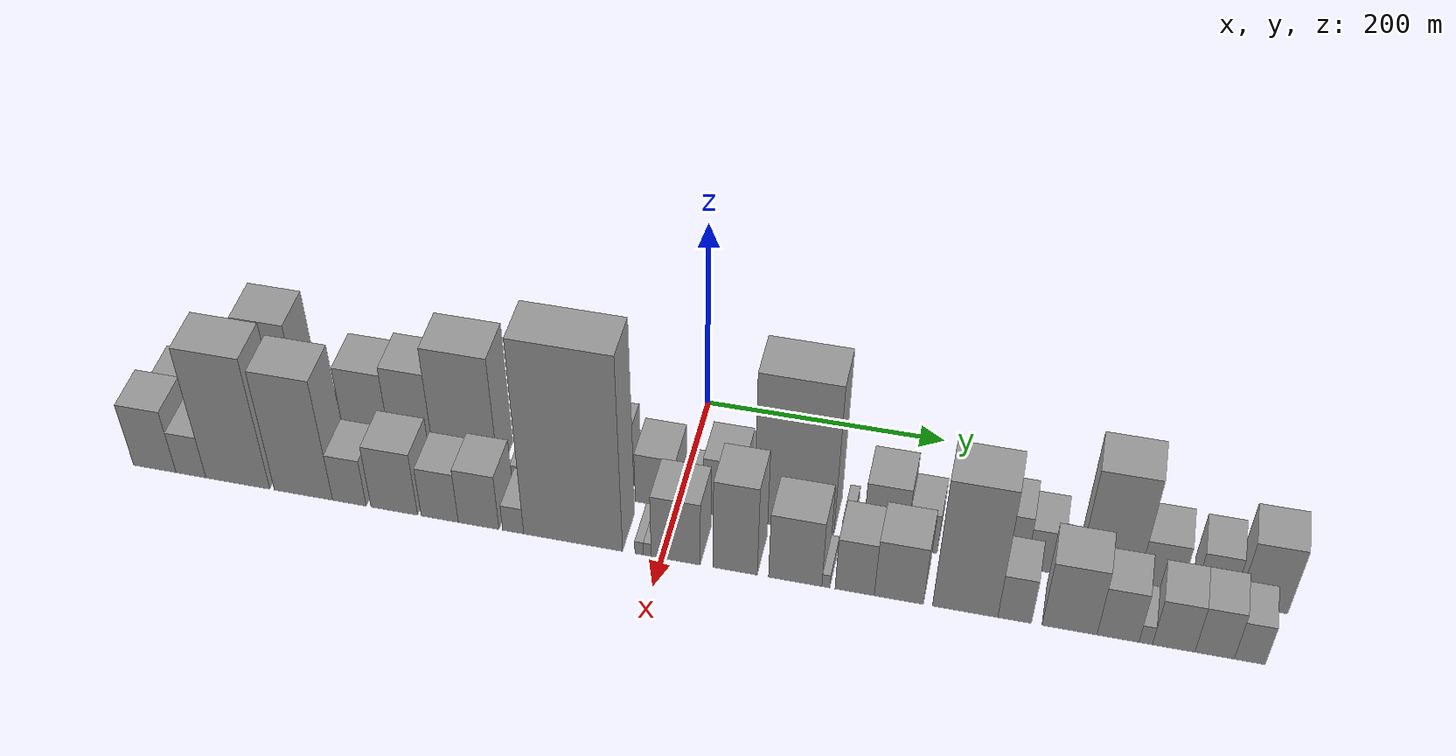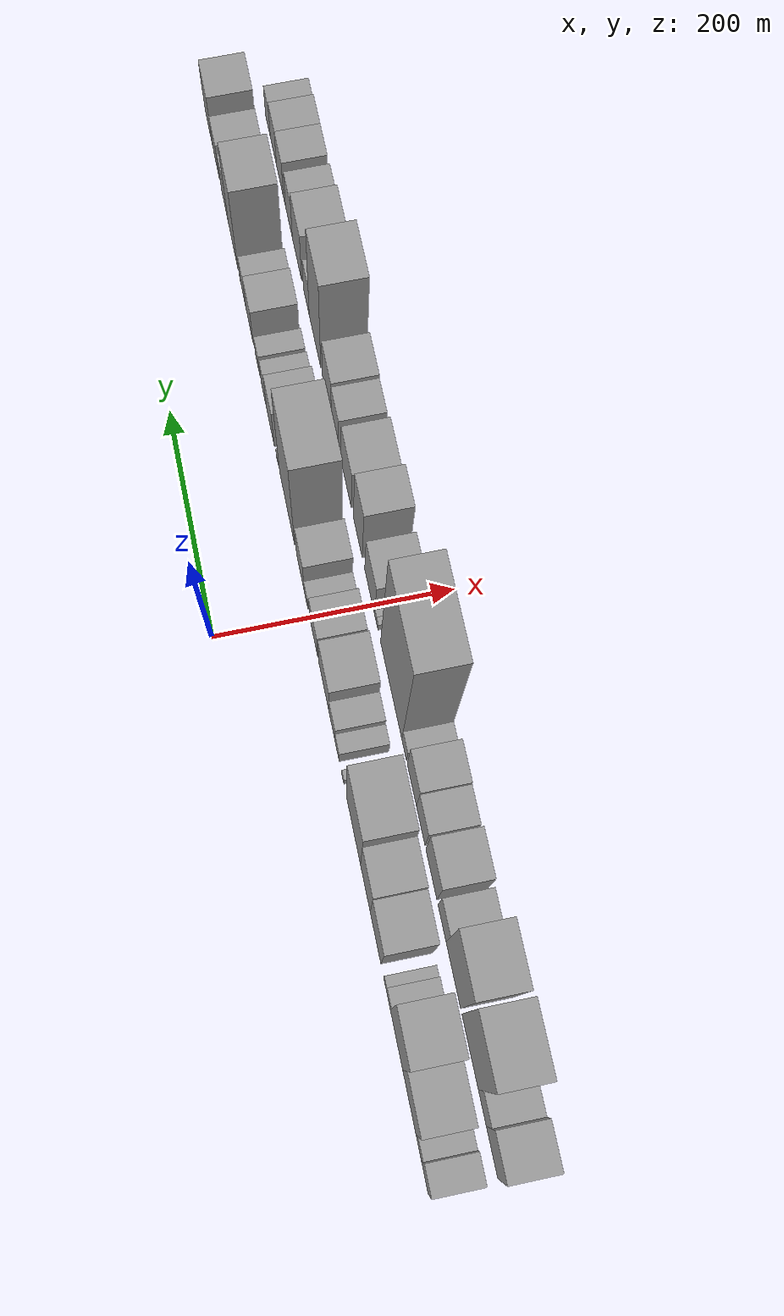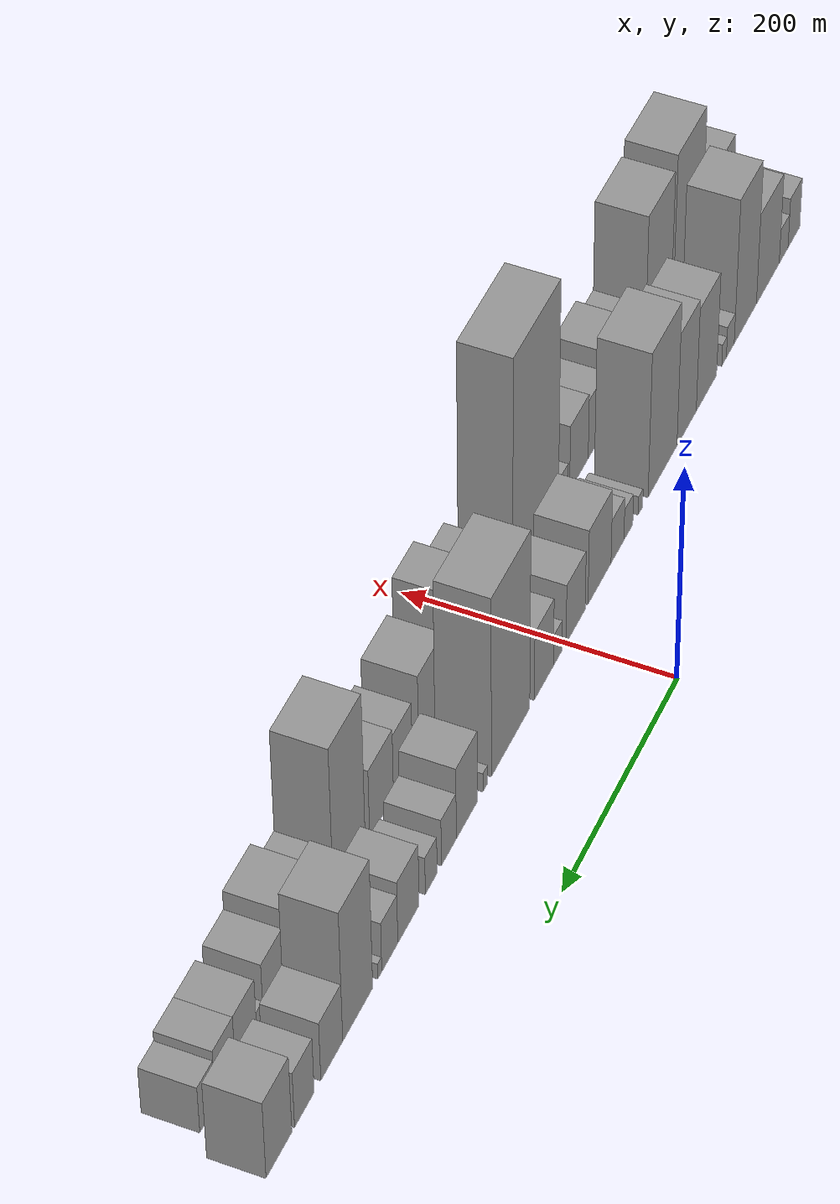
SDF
<sdf version="1.6">
 <world name="default">
  <scene>
   <sky><clouds><speed>12</speed></clouds></sky>
   <ambient>0.4 0.4 0.4 1</ambient>
   <background>0.7 0.7 0.7 1</background>
   <shadows>1</shadows>
  </scene>
  <gravity>0 0 -9.8066</gravity>
  <magnetic_field>6e-06 2.3e-05 -4.2e-05</magnetic_field>
  <physics default="0" name="default_physics" type="ode">
   <ode>
    <solver>
     <type>quick</type>
     <iters>10</iters>
     <sor>1.0</sor>
     <use_dynamic_moi_rescaling>0</use_dynamic_moi_rescaling>
    </solver>
    <constraints>
     <cfm>0</cfm>
     <erp>0.2</erp>
     <contact_max_correcting_vel>100</contact_max_correcting_vel>
     <contact_surface_layer>0.001</contact_surface_layer>
    </constraints>
   </ode>
   <max_step_size>0.004</max_step_size>
   <real_time_factor>1</real_time_factor>
   <real_time_update_rate>250</real_time_update_rate>
  </physics>
  <light name="sun" type="directional">
   <pose>0 0 10 0 0 0</pose>
   <diffuse>0.8 0.8 0.8 1</diffuse>
   <specular>0.2 0.2 0.2 1</specular>
   <attenuation>
    <range>1000</range>
    <constant>0.9</constant>
    <linear>0.01</linear>
    <quadratic>0.001</quadratic>
   </attenuation>
   <direction>-0.5 0.1 -0.9</direction>
  </light>
  <model name="building_1">
   <static>1</static>
   <pose>100.0000 -431.9511 0 0.000000 0.000000 0.000000</pose>
   <link name="link">
    <pose>0 0 24.00 0 0 0</pose>
    <collision name="collision"><geometry><box><size>40.0000 24.0978 48.0000</size></box></geometry></collision>
    <visual name="visual">
     <cast_shadows>0</cast_shadows>
     <geometry><box><size>40.0000 24.0978 48.0000</size></box></geometry>
     <material>
      <script>
       <uri>model://grey_wall/materials/scripts</uri>
       <uri>model://grey_wall/materials/textures</uri>
       <name>vrc/grey_wall</name>
      </script>
     </material>
    </visual>
   </link>
  </model>
  <model name="building_2">
   <static>1</static>
   <pose>100.0000 -410.9949 0 0.000000 0.000000 0.000000</pose>
   <link name="link">
    <pose>0 0 16.50 0 0 0</pose>
    <collision name="collision"><geometry><box><size>40.0000 17.8146 33.0000</size></box></geometry></collision>
    <visual name="visual">
     <cast_shadows>0</cast_shadows>
     <geometry><box><size>40.0000 17.8146 33.0000</size></box></geometry>
     <material>
      <script>
       <uri>model://grey_wall/materials/scripts</uri>
       <uri>model://grey_wall/materials/textures</uri>
       <name>vrc/grey_wall</name>
      </script>
     </material>
    </visual>
   </link>
  </model>
  <model name="building_3">
   <static>1</static>
   <pose>100.0000 -379.1846 0 0.000000 0.000000 0.000000</pose>
   <link name="link">
    <pose>0 0 43.50 0 0 0</pose>
    <collision name="collision"><geometry><box><size>40.0000 45.8061 87.0000</size></box></geometry></collision>
    <visual name="visual">
     <cast_shadows>0</cast_shadows>
     <geometry><box><size>40.0000 45.8061 87.0000</size></box></geometry>
     <material>
      <script>
       <uri>model://grey_wall/materials/scripts</uri>
       <uri>model://grey_wall/materials/textures</uri>
       <name>vrc/grey_wall</name>
      </script>
     </material>
    </visual>
   </link>
  </model>
  <model name="building_4">
   <static>1</static>
   <pose>100.0000 -334.3210 0 0.000000 0.000000 0.000000</pose>
   <link name="link">
    <pose>0 0 69.00 0 0 0</pose>
    <collision name="collision"><geometry><box><size>40.0000 43.9211 138.0000</size></box></geometry></collision>
    <visual name="visual">
     <cast_shadows>0</cast_shadows>
     <geometry><box><size>40.0000 43.9211 138.0000</size></box></geometry>
     <material>
      <script>
       <uri>model://grey_wall/materials/scripts</uri>
       <uri>model://grey_wall/materials/textures</uri>
       <name>vrc/grey_wall</name>
      </script>
     </material>
    </visual>
   </link>
  </model>
  <model name="building_5">
   <static>1</static>
   <pose>100.0000 -304.6716 0 0.000000 0.000000 0.000000</pose>
   <link name="link">
    <pose>0 0 15.00 0 0 0</pose>
    <collision name="collision"><geometry><box><size>40.0000 15.3777 30.0000</size></box></geometry></collision>
    <visual name="visual">
     <cast_shadows>0</cast_shadows>
     <geometry><box><size>40.0000 15.3777 30.0000</size></box></geometry>
     <material>
      <script>
       <uri>model://grey_wall/materials/scripts</uri>
       <uri>model://grey_wall/materials/textures</uri>
       <name>vrc/grey_wall</name>
      </script>
     </material>
    </visual>
   </link>
  </model>
  <model name="building_6">
   <static>1</static>
   <pose>100.0000 -292.4860 0 0.000000 0.000000 0.000000</pose>
   <link name="link">
    <pose>0 0 10.50 0 0 0</pose>
    <collision name="collision"><geometry><box><size>40.0000 8.9936 21.0000</size></box></geometry></collision>
    <visual name="visual">
     <cast_shadows>0</cast_shadows>
     <geometry><box><size>40.0000 8.9936 21.0000</size></box></geometry>
     <material>
      <script>
       <uri>model://grey_wall/materials/scripts</uri>
       <uri>model://grey_wall/materials/textures</uri>
       <name>vrc/grey_wall</name>
      </script>
     </material>
    </visual>
   </link>
  </model>
  <model name="building_7">
   <static>1</static>
   <pose>100.0000 -258.3586 0 0.000000 0.000000 0.000000</pose>
   <link name="link">
    <pose>0 0 49.50 0 0 0</pose>
    <collision name="collision"><geometry><box><size>40.0000 39.2611 99.0000</size></box></geometry></collision>
    <visual name="visual">
     <cast_shadows>0</cast_shadows>
     <geometry><box><size>40.0000 39.2611 99.0000</size></box></geometry>
     <material>
      <script>
       <uri>model://grey_wall/materials/scripts</uri>
       <uri>model://grey_wall/materials/textures</uri>
       <name>vrc/grey_wall</name>
      </script>
     </material>
    </visual>
   </link>
  </model>
  <model name="building_8">
   <static>1</static>
   <pose>100.0000 -220.4255 0 0.000000 0.000000 0.000000</pose>
   <link name="link">
    <pose>0 0 54.00 0 0 0</pose>
    <collision name="collision"><geometry><box><size>40.0000 36.6050 108.0000</size></box></geometry></collision>
    <visual name="visual">
     <cast_shadows>0</cast_shadows>
     <geometry><box><size>40.0000 36.6050 108.0000</size></box></geometry>
     <material>
      <script>
       <uri>model://grey_wall/materials/scripts</uri>
       <uri>model://grey_wall/materials/textures</uri>
       <name>vrc/grey_wall</name>
      </script>
     </material>
    </visual>
   </link>
  </model>
  <model name="building_9">
   <static>1</static>
   <pose>100.0000 -175.1118 0 0.000000 0.000000 0.000000</pose>
   <link name="link">
    <pose>0 0 69.00 0 0 0</pose>
    <collision name="collision"><geometry><box><size>40.0000 54.0224 138.0000</size></box></geometry></collision>
    <visual name="visual">
     <cast_shadows>0</cast_shadows>
     <geometry><box><size>40.0000 54.0224 138.0000</size></box></geometry>
     <material>
      <script>
       <uri>model://grey_wall/materials/scripts</uri>
       <uri>model://grey_wall/materials/textures</uri>
       <name>vrc/grey_wall</name>
      </script>
     </material>
    </visual>
   </link>
  </model>
  <model name="building_10">
   <static>1</static>
   <pose>100.0000 -134.0297 0 0.000000 0.000000 0.000000</pose>
   <link name="link">
    <pose>0 0 9.00 0 0 0</pose>
    <collision name="collision"><geometry><box><size>40.0000 8.1418 18.0000</size></box></geometry></collision>
    <visual name="visual">
     <cast_shadows>0</cast_shadows>
     <geometry><box><size>40.0000 8.1418 18.0000</size></box></geometry>
     <material>
      <script>
       <uri>model://grey_wall/materials/scripts</uri>
       <uri>model://grey_wall/materials/textures</uri>
       <name>vrc/grey_wall</name>
      </script>
     </material>
    </visual>
   </link>
  </model>
  <model name="building_11">
   <static>1</static>
   <pose>100.0000 -111.8180 0 0.000000 0.000000 0.000000</pose>
   <link name="link">
    <pose>0 0 15.00 0 0 0</pose>
    <collision name="collision"><geometry><box><size>40.0000 16.2816 30.0000</size></box></geometry></collision>
    <visual name="visual">
     <cast_shadows>0</cast_shadows>
     <geometry><box><size>40.0000 16.2816 30.0000</size></box></geometry>
     <material>
      <script>
       <uri>model://grey_wall/materials/scripts</uri>
       <uri>model://grey_wall/materials/textures</uri>
       <name>vrc/grey_wall</name>
      </script>
     </material>
    </visual>
   </link>
  </model>
  <model name="building_12">
   <static>1</static>
   <pose>100.0000 -91.9332 0 0.000000 0.000000 0.000000</pose>
   <link name="link">
    <pose>0 0 21.00 0 0 0</pose>
    <collision name="collision"><geometry><box><size>40.0000 23.4880 42.0000</size></box></geometry></collision>
    <visual name="visual">
     <cast_shadows>0</cast_shadows>
     <geometry><box><size>40.0000 23.4880 42.0000</size></box></geometry>
     <material>
      <script>
       <uri>model://grey_wall/materials/scripts</uri>
       <uri>model://grey_wall/materials/textures</uri>
       <name>vrc/grey_wall</name>
      </script>
     </material>
    </visual>
   </link>
  </model>
  <model name="building_13">
   <static>1</static>
   <pose>100.0000 -59.5194 0 0.000000 0.000000 0.000000</pose>
   <link name="link">
    <pose>0 0 36.00 0 0 0</pose>
    <collision name="collision"><geometry><box><size>40.0000 41.3396 72.0000</size></box></geometry></collision>
    <visual name="visual">
     <cast_shadows>0</cast_shadows>
     <geometry><box><size>40.0000 41.3396 72.0000</size></box></geometry>
     <material>
      <script>
       <uri>model://grey_wall/materials/scripts</uri>
       <uri>model://grey_wall/materials/textures</uri>
       <name>vrc/grey_wall</name>
      </script>
     </material>
    </visual>
   </link>
  </model>
  <model name="building_14">
   <static>1</static>
   <pose>100.0000 -16.9696 0 0.000000 0.000000 0.000000</pose>
   <link name="link">
    <pose>0 0 28.50 0 0 0</pose>
    <collision name="collision"><geometry><box><size>40.0000 33.7600 57.0000</size></box></geometry></collision>
    <visual name="visual">
     <cast_shadows>0</cast_shadows>
     <geometry><box><size>40.0000 33.7600 57.0000</size></box></geometry>
     <material>
      <script>
       <uri>model://grey_wall/materials/scripts</uri>
       <uri>model://grey_wall/materials/textures</uri>
       <name>vrc/grey_wall</name>
      </script>
     </material>
    </visual>
   </link>
  </model>
  <model name="building_15">
   <static>1</static>
   <pose>100.0000 14.4536 0 0.000000 0.000000 0.000000</pose>
   <link name="link">
    <pose>0 0 15.00 0 0 0</pose>
    <collision name="collision"><geometry><box><size>40.0000 15.0865 30.0000</size></box></geometry></collision>
    <visual name="visual">
     <cast_shadows>0</cast_shadows>
     <geometry><box><size>40.0000 15.0865 30.0000</size></box></geometry>
     <material>
      <script>
       <uri>model://grey_wall/materials/scripts</uri>
       <uri>model://grey_wall/materials/textures</uri>
       <name>vrc/grey_wall</name>
      </script>
     </material>
    </visual>
   </link>
  </model>
  <model name="building_16">
   <static>1</static>
   <pose>100.0000 38.5198 0 0.000000 0.000000 0.000000</pose>
   <link name="link">
    <pose>0 0 33.00 0 0 0</pose>
    <collision name="collision"><geometry><box><size>40.0000 33.0458 66.0000</size></box></geometry></collision>
    <visual name="visual">
     <cast_shadows>0</cast_shadows>
     <geometry><box><size>40.0000 33.0458 66.0000</size></box></geometry>
     <material>
      <script>
       <uri>model://grey_wall/materials/scripts</uri>
       <uri>model://grey_wall/materials/textures</uri>
       <name>vrc/grey_wall</name>
      </script>
     </material>
    </visual>
   </link>
  </model>
  <model name="building_17">
   <static>1</static>
   <pose>100.0000 95.5724 0 0.000000 0.000000 0.000000</pose>
   <link name="link">
    <pose>0 0 85.50 0 0 0</pose>
    <collision name="collision"><geometry><box><size>40.0000 65.0595 171.0000</size></box></geometry></collision>
    <visual name="visual">
     <cast_shadows>0</cast_shadows>
     <geometry><box><size>40.0000 65.0595 171.0000</size></box></geometry>
     <material>
      <script>
       <uri>model://grey_wall/materials/scripts</uri>
       <uri>model://grey_wall/materials/textures</uri>
       <name>vrc/grey_wall</name>
      </script>
     </material>
    </visual>
   </link>
  </model>
  <model name="building_18">
   <static>1</static>
   <pose>100.0000 138.0906 0 0.000000 0.000000 0.000000</pose>
   <link name="link">
    <pose>0 0 9.00 0 0 0</pose>
    <collision name="collision"><geometry><box><size>40.0000 7.9769 18.0000</size></box></geometry></collision>
    <visual name="visual">
     <cast_shadows>0</cast_shadows>
     <geometry><box><size>40.0000 7.9769 18.0000</size></box></geometry>
     <material>
      <script>
       <uri>model://grey_wall/materials/scripts</uri>
       <uri>model://grey_wall/materials/textures</uri>
       <name>vrc/grey_wall</name>
      </script>
     </material>
    </visual>
   </link>
  </model>
  <model name="building_19">
   <static>1</static>
   <pose>100.0000 168.5729 0 0.000000 0.000000 0.000000</pose>
   <link name="link">
    <pose>0 0 34.50 0 0 0</pose>
    <collision name="collision"><geometry><box><size>40.0000 34.9877 69.0000</size></box></geometry></collision>
    <visual name="visual">
     <cast_shadows>0</cast_shadows>
     <geometry><box><size>40.0000 34.9877 69.0000</size></box></geometry>
     <material>
      <script>
       <uri>model://grey_wall/materials/scripts</uri>
       <uri>model://grey_wall/materials/textures</uri>
       <name>vrc/grey_wall</name>
      </script>
     </material>
    </visual>
   </link>
  </model>
  <model name="building_20">
   <static>1</static>
   <pose>100.0000 198.2726 0 0.000000 0.000000 0.000000</pose>
   <link name="link">
    <pose>0 0 22.50 0 0 0</pose>
    <collision name="collision"><geometry><box><size>40.0000 24.4117 45.0000</size></box></geometry></collision>
    <visual name="visual">
     <cast_shadows>0</cast_shadows>
     <geometry><box><size>40.0000 24.4117 45.0000</size></box></geometry>
     <material>
      <script>
       <uri>model://grey_wall/materials/scripts</uri>
       <uri>model://grey_wall/materials/textures</uri>
       <name>vrc/grey_wall</name>
      </script>
     </material>
    </visual>
   </link>
  </model>
  <model name="building_21">
   <static>1</static>
   <pose>100.0000 226.9688 0 0.000000 0.000000 0.000000</pose>
   <link name="link">
    <pose>0 0 18.00 0 0 0</pose>
    <collision name="collision"><geometry><box><size>40.0000 18.9807 36.0000</size></box></geometry></collision>
    <visual name="visual">
     <cast_shadows>0</cast_shadows>
     <geometry><box><size>40.0000 18.9807 36.0000</size></box></geometry>
     <material>
      <script>
       <uri>model://grey_wall/materials/scripts</uri>
       <uri>model://grey_wall/materials/textures</uri>
       <name>vrc/grey_wall</name>
      </script>
     </material>
    </visual>
   </link>
  </model>
  <model name="building_22">
   <static>1</static>
   <pose>100.0000 263.3663 0 0.000000 0.000000 0.000000</pose>
   <link name="link">
    <pose>0 0 30.00 0 0 0</pose>
    <collision name="collision"><geometry><box><size>40.0000 33.8144 60.0000</size></box></geometry></collision>
    <visual name="visual">
     <cast_shadows>0</cast_shadows>
     <geometry><box><size>40.0000 33.8144 60.0000</size></box></geometry>
     <material>
      <script>
       <uri>model://grey_wall/materials/scripts</uri>
       <uri>model://grey_wall/materials/textures</uri>
       <name>vrc/grey_wall</name>
      </script>
     </material>
    </visual>
   </link>
  </model>
  <model name="building_23">
   <static>1</static>
   <pose>100.0000 292.9043 0 0.000000 0.000000 0.000000</pose>
   <link name="link">
    <pose>0 0 24.00 0 0 0</pose>
    <collision name="collision"><geometry><box><size>40.0000 25.2616 48.0000</size></box></geometry></collision>
    <visual name="visual">
     <cast_shadows>0</cast_shadows>
     <geometry><box><size>40.0000 25.2616 48.0000</size></box></geometry>
     <material>
      <script>
       <uri>model://grey_wall/materials/scripts</uri>
       <uri>model://grey_wall/materials/textures</uri>
       <name>vrc/grey_wall</name>
      </script>
     </material>
    </visual>
   </link>
  </model>
  <model name="building_24">
   <static>1</static>
   <pose>100.0000 308.6406 0 0.000000 0.000000 0.000000</pose>
   <link name="link">
    <pose>0 0 7.50 0 0 0</pose>
    <collision name="collision"><geometry><box><size>40.0000 6.2110 15.0000</size></box></geometry></collision>
    <visual name="visual">
     <cast_shadows>0</cast_shadows>
     <geometry><box><size>40.0000 6.2110 15.0000</size></box></geometry>
     <material>
      <script>
       <uri>model://grey_wall/materials/scripts</uri>
       <uri>model://grey_wall/materials/textures</uri>
       <name>vrc/grey_wall</name>
      </script>
     </material>
    </visual>
   </link>
  </model>
  <model name="building_25">
   <static>1</static>
   <pose>100.0000 342.8545 0 0.000000 0.000000 0.000000</pose>
   <link name="link">
    <pose>0 0 63.00 0 0 0</pose>
    <collision name="collision"><geometry><box><size>40.0000 46.2169 126.0000</size></box></geometry></collision>
    <visual name="visual">
     <cast_shadows>0</cast_shadows>
     <geometry><box><size>40.0000 46.2169 126.0000</size></box></geometry>
     <material>
      <script>
       <uri>model://grey_wall/materials/scripts</uri>
       <uri>model://grey_wall/materials/textures</uri>
       <name>vrc/grey_wall</name>
      </script>
     </material>
    </visual>
   </link>
  </model>
  <model name="building_26">
   <static>1</static>
   <pose>100.0000 382.6097 0 0.000000 0.000000 0.000000</pose>
   <link name="link">
    <pose>0 0 28.50 0 0 0</pose>
    <collision name="collision"><geometry><box><size>40.0000 33.2934 57.0000</size></box></geometry></collision>
    <visual name="visual">
     <cast_shadows>0</cast_shadows>
     <geometry><box><size>40.0000 33.2934 57.0000</size></box></geometry>
     <material>
      <script>
       <uri>model://grey_wall/materials/scripts</uri>
       <uri>model://grey_wall/materials/textures</uri>
       <name>vrc/grey_wall</name>
      </script>
     </material>
    </visual>
   </link>
  </model>
  <model name="building_27">
   <static>1</static>
   <pose>100.0000 423.9130 0 0.000000 0.000000 0.000000</pose>
   <link name="link">
    <pose>0 0 27.00 0 0 0</pose>
    <collision name="collision"><geometry><box><size>40.0000 29.3131 54.0000</size></box></geometry></collision>
    <visual name="visual">
     <cast_shadows>0</cast_shadows>
     <geometry><box><size>40.0000 29.3131 54.0000</size></box></geometry>
     <material>
      <script>
       <uri>model://grey_wall/materials/scripts</uri>
       <uri>model://grey_wall/materials/textures</uri>
       <name>vrc/grey_wall</name>
      </script>
     </material>
    </visual>
   </link>
  </model>
  <model name="building_28">
   <static>1</static>
   <pose>100.0000 461.6199 0 0.000000 0.000000 0.000000</pose>
   <link name="link">
    <pose>0 0 37.50 0 0 0</pose>
    <collision name="collision"><geometry><box><size>40.0000 38.1006 75.0000</size></box></geometry></collision>
    <visual name="visual">
     <cast_shadows>0</cast_shadows>
     <geometry><box><size>40.0000 38.1006 75.0000</size></box></geometry>
     <material>
      <script>
       <uri>model://grey_wall/materials/scripts</uri>
       <uri>model://grey_wall/materials/textures</uri>
       <name>vrc/grey_wall</name>
      </script>
     </material>
    </visual>
   </link>
  </model>
  <model name="building_29">
   <static>1</static>
   <pose>152.0000 -425.4800 0 0.000000 0.000000 0.000000</pose>
   <link name="link">
    <pose>0 0 36.00 0 0 0</pose>
    <collision name="collision"><geometry><box><size>40.0000 37.0400 72.0000</size></box></geometry></collision>
    <visual name="visual">
     <cast_shadows>0</cast_shadows>
     <geometry><box><size>40.0000 37.0400 72.0000</size></box></geometry>
     <material>
      <script>
       <uri>model://grey_wall/materials/scripts</uri>
       <uri>model://grey_wall/materials/textures</uri>
       <name>vrc/grey_wall</name>
      </script>
     </material>
    </visual>
   </link>
  </model>
  <model name="building_30">
   <static>1</static>
   <pose>152.0000 -393.9483 0 0.000000 0.000000 0.000000</pose>
   <link name="link">
    <pose>0 0 24.00 0 0 0</pose>
    <collision name="collision"><geometry><box><size>40.0000 26.0234 48.0000</size></box></geometry></collision>
    <visual name="visual">
     <cast_shadows>0</cast_shadows>
     <geometry><box><size>40.0000 26.0234 48.0000</size></box></geometry>
     <material>
      <script>
       <uri>model://grey_wall/materials/scripts</uri>
       <uri>model://grey_wall/materials/textures</uri>
       <name>vrc/grey_wall</name>
      </script>
     </material>
    </visual>
   </link>
  </model>
  <model name="building_31">
   <static>1</static>
   <pose>152.0000 -353.4192 0 0.000000 0.000000 0.000000</pose>
   <link name="link">
    <pose>0 0 75.00 0 0 0</pose>
    <collision name="collision"><geometry><box><size>40.0000 55.0347 150.0000</size></box></geometry></collision>
    <visual name="visual">
     <cast_shadows>0</cast_shadows>
     <geometry><box><size>40.0000 55.0347 150.0000</size></box></geometry>
     <material>
      <script>
       <uri>model://grey_wall/materials/scripts</uri>
       <uri>model://grey_wall/materials/textures</uri>
       <name>vrc/grey_wall</name>
      </script>
     </material>
    </visual>
   </link>
  </model>
  <model name="building_32">
   <static>1</static>
   <pose>152.0000 -297.0248 0 0.000000 0.000000 0.000000</pose>
   <link name="link">
    <pose>0 0 69.00 0 0 0</pose>
    <collision name="collision"><geometry><box><size>40.0000 49.7542 138.0000</size></box></geometry></collision>
    <visual name="visual">
     <cast_shadows>0</cast_shadows>
     <geometry><box><size>40.0000 49.7542 138.0000</size></box></geometry>
     <material>
      <script>
       <uri>model://grey_wall/materials/scripts</uri>
       <uri>model://grey_wall/materials/textures</uri>
       <name>vrc/grey_wall</name>
      </script>
     </material>
    </visual>
   </link>
  </model>
  <model name="building_33">
   <static>1</static>
   <pose>152.0000 -257.9011 0 0.000000 0.000000 0.000000</pose>
   <link name="link">
    <pose>0 0 27.00 0 0 0</pose>
    <collision name="collision"><geometry><box><size>40.0000 28.4930 54.0000</size></box></geometry></collision>
    <visual name="visual">
     <cast_shadows>0</cast_shadows>
     <geometry><box><size>40.0000 28.4930 54.0000</size></box></geometry>
     <material>
      <script>
       <uri>model://grey_wall/materials/scripts</uri>
       <uri>model://grey_wall/materials/textures</uri>
       <name>vrc/grey_wall</name>
      </script>
     </material>
    </visual>
   </link>
  </model>
  <model name="building_34">
   <static>1</static>
   <pose>152.0000 -220.0412 0 0.000000 0.000000 0.000000</pose>
   <link name="link">
    <pose>0 0 36.00 0 0 0</pose>
    <collision name="collision"><geometry><box><size>40.0000 39.2268 72.0000</size></box></geometry></collision>
    <visual name="visual">
     <cast_shadows>0</cast_shadows>
     <geometry><box><size>40.0000 39.2268 72.0000</size></box></geometry>
     <material>
      <script>
       <uri>model://grey_wall/materials/scripts</uri>
       <uri>model://grey_wall/materials/textures</uri>
       <name>vrc/grey_wall</name>
      </script>
     </material>
    </visual>
   </link>
  </model>
  <model name="building_35">
   <static>1</static>
   <pose>152.0000 -181.9246 0 0.000000 0.000000 0.000000</pose>
   <link name="link">
    <pose>0 0 28.50 0 0 0</pose>
    <collision name="collision"><geometry><box><size>40.0000 31.0065 57.0000</size></box></geometry></collision>
    <visual name="visual">
     <cast_shadows>0</cast_shadows>
     <geometry><box><size>40.0000 31.0065 57.0000</size></box></geometry>
     <material>
      <script>
       <uri>model://grey_wall/materials/scripts</uri>
       <uri>model://grey_wall/materials/textures</uri>
       <name>vrc/grey_wall</name>
      </script>
     </material>
    </visual>
   </link>
  </model>
  <model name="building_36">
   <static>1</static>
   <pose>152.0000 -149.5158 0 0.000000 0.000000 0.000000</pose>
   <link name="link">
    <pose>0 0 31.50 0 0 0</pose>
    <collision name="collision"><geometry><box><size>40.0000 33.8110 63.0000</size></box></geometry></collision>
    <visual name="visual">
     <cast_shadows>0</cast_shadows>
     <geometry><box><size>40.0000 33.8110 63.0000</size></box></geometry>
     <material>
      <script>
       <uri>model://grey_wall/materials/scripts</uri>
       <uri>model://grey_wall/materials/textures</uri>
       <name>vrc/grey_wall</name>
      </script>
     </material>
    </visual>
   </link>
  </model>
  <model name="building_37">
   <static>1</static>
   <pose>152.0000 -120.9369 0 0.000000 0.000000 0.000000</pose>
   <link name="link">
    <pose>0 0 15.00 0 0 0</pose>
    <collision name="collision"><geometry><box><size>40.0000 17.3468 30.0000</size></box></geometry></collision>
    <visual name="visual">
     <cast_shadows>0</cast_shadows>
     <geometry><box><size>40.0000 17.3468 30.0000</size></box></geometry>
     <material>
      <script>
       <uri>model://grey_wall/materials/scripts</uri>
       <uri>model://grey_wall/materials/textures</uri>
       <name>vrc/grey_wall</name>
      </script>
     </material>
    </visual>
   </link>
  </model>
  <model name="building_38">
   <static>1</static>
   <pose>152.0000 -71.8113 0 0.000000 0.000000 0.000000</pose>
   <link name="link">
    <pose>0 0 109.50 0 0 0</pose>
    <collision name="collision"><geometry><box><size>40.0000 80.9043 219.0000</size></box></geometry></collision>
    <visual name="visual">
     <cast_shadows>0</cast_shadows>
     <geometry><box><size>40.0000 80.9043 219.0000</size></box></geometry>
     <material>
      <script>
       <uri>model://grey_wall/materials/scripts</uri>
       <uri>model://grey_wall/materials/textures</uri>
       <name>vrc/grey_wall</name>
      </script>
     </material>
    </visual>
   </link>
  </model>
  <model name="building_39">
   <static>1</static>
   <pose>152.0000 -17.9015 0 0.000000 0.000000 0.000000</pose>
   <link name="link">
    <pose>0 0 7.50 0 0 0</pose>
    <collision name="collision"><geometry><box><size>40.0000 6.9153 15.0000</size></box></geometry></collision>
    <visual name="visual">
     <cast_shadows>0</cast_shadows>
     <geometry><box><size>40.0000 6.9153 15.0000</size></box></geometry>
     <material>
      <script>
       <uri>model://grey_wall/materials/scripts</uri>
       <uri>model://grey_wall/materials/textures</uri>
       <name>vrc/grey_wall</name>
      </script>
     </material>
    </visual>
   </link>
  </model>
  <model name="building_40">
   <static>1</static>
   <pose>152.0000 -11.3242 0 0.000000 0.000000 0.000000</pose>
   <link name="link">
    <pose>0 0 7.50 0 0 0</pose>
    <collision name="collision"><geometry><box><size>40.0000 6.2392 15.0000</size></box></geometry></collision>
    <visual name="visual">
     <cast_shadows>0</cast_shadows>
     <geometry><box><size>40.0000 6.2392 15.0000</size></box></geometry>
     <material>
      <script>
       <uri>model://grey_wall/materials/scripts</uri>
       <uri>model://grey_wall/materials/textures</uri>
       <name>vrc/grey_wall</name>
      </script>
     </material>
    </visual>
   </link>
  </model>
  <model name="building_41">
   <static>1</static>
   <pose>152.0000 11.5406 0 0.000000 0.000000 0.000000</pose>
   <link name="link">
    <pose>0 0 36.00 0 0 0</pose>
    <collision name="collision"><geometry><box><size>40.0000 39.4904 72.0000</size></box></geometry></collision>
    <visual name="visual">
     <cast_shadows>0</cast_shadows>
     <geometry><box><size>40.0000 39.4904 72.0000</size></box></geometry>
     <material>
      <script>
       <uri>model://grey_wall/materials/scripts</uri>
       <uri>model://grey_wall/materials/textures</uri>
       <name>vrc/grey_wall</name>
      </script>
     </material>
    </visual>
   </link>
  </model>
  <model name="building_42">
   <static>1</static>
   <pose>152.0000 58.9898 0 0.000000 0.000000 0.000000</pose>
   <link name="link">
    <pose>0 0 51.00 0 0 0</pose>
    <collision name="collision"><geometry><box><size>40.0000 35.4080 102.0000</size></box></geometry></collision>
    <visual name="visual">
     <cast_shadows>0</cast_shadows>
     <geometry><box><size>40.0000 35.4080 102.0000</size></box></geometry>
     <material>
      <script>
       <uri>model://grey_wall/materials/scripts</uri>
       <uri>model://grey_wall/materials/textures</uri>
       <name>vrc/grey_wall</name>
      </script>
     </material>
    </visual>
   </link>
  </model>
  <model name="building_43">
   <static>1</static>
   <pose>152.0000 106.7385 0 0.000000 0.000000 0.000000</pose>
   <link name="link">
    <pose>0 0 37.50 0 0 0</pose>
    <collision name="collision"><geometry><box><size>40.0000 42.0894 75.0000</size></box></geometry></collision>
    <visual name="visual">
     <cast_shadows>0</cast_shadows>
     <geometry><box><size>40.0000 42.0894 75.0000</size></box></geometry>
     <material>
      <script>
       <uri>model://grey_wall/materials/scripts</uri>
       <uri>model://grey_wall/materials/textures</uri>
       <name>vrc/grey_wall</name>
      </script>
     </material>
    </visual>
   </link>
  </model>
  <model name="building_44">
   <static>1</static>
   <pose>152.0000 130.9708 0 0.000000 0.000000 0.000000</pose>
   <link name="link">
    <pose>0 0 7.50 0 0 0</pose>
    <collision name="collision"><geometry><box><size>40.0000 6.3752 15.0000</size></box></geometry></collision>
    <visual name="visual">
     <cast_shadows>0</cast_shadows>
     <geometry><box><size>40.0000 6.3752 15.0000</size></box></geometry>
     <material>
      <script>
       <uri>model://grey_wall/materials/scripts</uri>
       <uri>model://grey_wall/materials/textures</uri>
       <name>vrc/grey_wall</name>
      </script>
     </material>
    </visual>
   </link>
  </model>
  <model name="building_45">
   <static>1</static>
   <pose>152.0000 153.4798 0 0.000000 0.000000 0.000000</pose>
   <link name="link">
    <pose>0 0 30.00 0 0 0</pose>
    <collision name="collision"><geometry><box><size>40.0000 30.6429 60.0000</size></box></geometry></collision>
    <visual name="visual">
     <cast_shadows>0</cast_shadows>
     <geometry><box><size>40.0000 30.6429 60.0000</size></box></geometry>
     <material>
      <script>
       <uri>model://grey_wall/materials/scripts</uri>
       <uri>model://grey_wall/materials/textures</uri>
       <name>vrc/grey_wall</name>
      </script>
     </material>
    </visual>
   </link>
  </model>
  <model name="building_46">
   <static>1</static>
   <pose>152.0000 187.9331 0 0.000000 0.000000 0.000000</pose>
   <link name="link">
    <pose>0 0 33.00 0 0 0</pose>
    <collision name="collision"><geometry><box><size>40.0000 38.2636 66.0000</size></box></geometry></collision>
    <visual name="visual">
     <cast_shadows>0</cast_shadows>
     <geometry><box><size>40.0000 38.2636 66.0000</size></box></geometry>
     <material>
      <script>
       <uri>model://grey_wall/materials/scripts</uri>
       <uri>model://grey_wall/materials/textures</uri>
       <name>vrc/grey_wall</name>
      </script>
     </material>
    </visual>
   </link>
  </model>
  <model name="building_47">
   <static>1</static>
   <pose>152.0000 239.1756 0 0.000000 0.000000 0.000000</pose>
   <link name="link">
    <pose>0 0 73.50 0 0 0</pose>
    <collision name="collision"><geometry><box><size>40.0000 50.2215 147.0000</size></box></geometry></collision>
    <visual name="visual">
     <cast_shadows>0</cast_shadows>
     <geometry><box><size>40.0000 50.2215 147.0000</size></box></geometry>
     <material>
      <script>
       <uri>model://grey_wall/materials/scripts</uri>
       <uri>model://grey_wall/materials/textures</uri>
       <name>vrc/grey_wall</name>
      </script>
     </material>
    </visual>
   </link>
  </model>
  <model name="building_48">
   <static>1</static>
   <pose>152.0000 277.1681 0 0.000000 0.000000 0.000000</pose>
   <link name="link">
    <pose>0 0 25.50 0 0 0</pose>
    <collision name="collision"><geometry><box><size>40.0000 25.7635 51.0000</size></box></geometry></collision>
    <visual name="visual">
     <cast_shadows>0</cast_shadows>
     <geometry><box><size>40.0000 25.7635 51.0000</size></box></geometry>
     <material>
      <script>
       <uri>model://grey_wall/materials/scripts</uri>
       <uri>model://grey_wall/materials/textures</uri>
       <name>vrc/grey_wall</name>
      </script>
     </material>
    </visual>
   </link>
  </model>
  <model name="building_49">
   <static>1</static>
   <pose>152.0000 318.8669 0 0.000000 0.000000 0.000000</pose>
   <link name="link">
    <pose>0 0 37.50 0 0 0</pose>
    <collision name="collision"><geometry><box><size>40.0000 41.6340 75.0000</size></box></geometry></collision>
    <visual name="visual">
     <cast_shadows>0</cast_shadows>
     <geometry><box><size>40.0000 41.6340 75.0000</size></box></geometry>
     <material>
      <script>
       <uri>model://grey_wall/materials/scripts</uri>
       <uri>model://grey_wall/materials/textures</uri>
       <name>vrc/grey_wall</name>
      </script>
     </material>
    </visual>
   </link>
  </model>
  <model name="building_50">
   <static>1</static>
   <pose>152.0000 355.4499 0 0.000000 0.000000 0.000000</pose>
   <link name="link">
    <pose>0 0 28.50 0 0 0</pose>
    <collision name="collision"><geometry><box><size>40.0000 31.5321 57.0000</size></box></geometry></collision>
    <visual name="visual">
     <cast_shadows>0</cast_shadows>
     <geometry><box><size>40.0000 31.5321 57.0000</size></box></geometry>
     <material>
      <script>
       <uri>model://grey_wall/materials/scripts</uri>
       <uri>model://grey_wall/materials/textures</uri>
       <name>vrc/grey_wall</name>
      </script>
     </material>
    </visual>
   </link>
  </model>
  <model name="building_51">
   <static>1</static>
   <pose>152.0000 376.2631 0 0.000000 0.000000 0.000000</pose>
   <link name="link">
    <pose>0 0 10.50 0 0 0</pose>
    <collision name="collision"><geometry><box><size>40.0000 10.0943 21.0000</size></box></geometry></collision>
    <visual name="visual">
     <cast_shadows>0</cast_shadows>
     <geometry><box><size>40.0000 10.0943 21.0000</size></box></geometry>
     <material>
      <script>
       <uri>model://grey_wall/materials/scripts</uri>
       <uri>model://grey_wall/materials/textures</uri>
       <name>vrc/grey_wall</name>
      </script>
     </material>
    </visual>
   </link>
  </model>
  <model name="building_52">
   <static>1</static>
   <pose>152.0000 397.1183 0 0.000000 0.000000 0.000000</pose>
   <link name="link">
    <pose>0 0 27.00 0 0 0</pose>
    <collision name="collision"><geometry><box><size>40.0000 31.6160 54.0000</size></box></geometry></collision>
    <visual name="visual">
     <cast_shadows>0</cast_shadows>
     <geometry><box><size>40.0000 31.6160 54.0000</size></box></geometry>
     <material>
      <script>
       <uri>model://grey_wall/materials/scripts</uri>
       <uri>model://grey_wall/materials/textures</uri>
       <name>vrc/grey_wall</name>
      </script>
     </material>
    </visual>
   </link>
  </model>
  <model name="building_53">
   <static>1</static>
   <pose>152.0000 427.5307 0 0.000000 0.000000 0.000000</pose>
   <link name="link">
    <pose>0 0 27.00 0 0 0</pose>
    <collision name="collision"><geometry><box><size>40.0000 29.2088 54.0000</size></box></geometry></collision>
    <visual name="visual">
     <cast_shadows>0</cast_shadows>
     <geometry><box><size>40.0000 29.2088 54.0000</size></box></geometry>
     <material>
      <script>
       <uri>model://grey_wall/materials/scripts</uri>
       <uri>model://grey_wall/materials/textures</uri>
       <name>vrc/grey_wall</name>
      </script>
     </material>
    </visual>
   </link>
  </model>
  <model name="building_54">
   <static>1</static>
   <pose>152.0000 453.5761 0 0.000000 0.000000 0.000000</pose>
   <link name="link">
    <pose>0 0 22.50 0 0 0</pose>
    <collision name="collision"><geometry><box><size>40.0000 22.8821 45.0000</size></box></geometry></collision>
    <visual name="visual">
     <cast_shadows>0</cast_shadows>
     <geometry><box><size>40.0000 22.8821 45.0000</size></box></geometry>
     <material>
      <script>
       <uri>model://grey_wall/materials/scripts</uri>
       <uri>model://grey_wall/materials/textures</uri>
       <name>vrc/grey_wall</name>
      </script>
     </material>
    </visual>
   </link>
  </model>
 </world>
</sdf>
